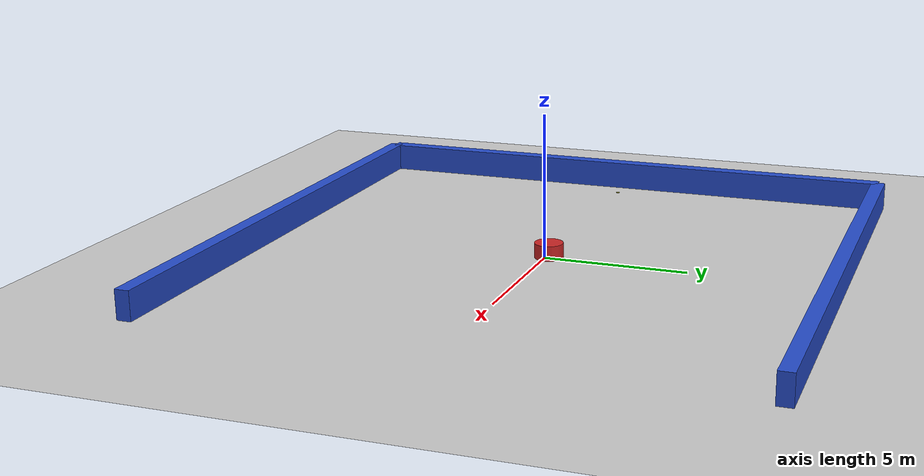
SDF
<sdf version="1.6">
   <world name="default">
      <include>
         <uri>model://ground_plane</uri>
      </include>
      <include>
         <uri>model://sun</uri>
      </include>

    <model name="hardlibobs_141">
      <static>1</static>
      <pose frame="">-0.225000 0.075000 0.000000 0.000000 0.000000 0.000000</pose>
      <link name="link">
        <inertial>
          <mass>1</mass>
          <inertia>
            <ixx>0.145833</ixx>
            <ixy>0</ixy>
            <ixz>0</ixz>
            <iyy>0.145833</iyy>
            <iyz>0</iyz>
            <izz>0.125</izz>
          </inertia>
        </inertial>
        <collision name="collision">
           <geometry>
            <cylinder>
                <radius>0.5000</radius>
                 <length> 1 </length>
            </cylinder>
          </geometry>
           <surface>
            <contact>
              <ode />
            </contact>
            <bounce />
            <friction>
              <torsional>
                <ode />
              </torsional>
              <ode />
            </friction>
          </surface>
        </collision>
        <visual name="visual">
           <geometry>
            <cylinder>
                <radius>0.5000</radius>
                 <length> 1 </length>
            </cylinder>
          </geometry>
          <material>
            <script>
              <name>Gazebo/Red</name>
              <uri>file://media/materials/scripts/gazebo.material</uri>
            </script>
          </material>
        </visual>
        <self_collide>0</self_collide>
        <kinematic>0</kinematic>
        <gravity>1</gravity>
      </link>
      <plugin name="hardlibobs_141" filename="hardlibobs_141.so" />
    </model>

    <model name="mediumlibobs_118">
      <static>1</static>
      <pose frame="">-0.225000 0.075000 0.000000 0.000000 0.000000 0.000000</pose>
      <link name="link">
        <inertial>
          <mass>1</mass>
          <inertia>
            <ixx>0.145833</ixx>
            <ixy>0</ixy>
            <ixz>0</ixz>
            <iyy>0.145833</iyy>
            <iyz>0</iyz>
            <izz>0.125</izz>
          </inertia>
        </inertial>
        <collision name="collision">
           <geometry>
            <cylinder>
                <radius>0.5000</radius>
                 <length> 1 </length>
            </cylinder>
          </geometry>
           <surface>
            <contact>
              <ode />
            </contact>
            <bounce />
            <friction>
              <torsional>
                <ode />
              </torsional>
              <ode />
            </friction>
          </surface>
        </collision>
        <visual name="visual">
           <geometry>
            <cylinder>
                <radius>0.5000</radius>
                 <length> 1 </length>
            </cylinder>
          </geometry>
          <material>
            <script>
              <name>Gazebo/Red</name>
              <uri>file://media/materials/scripts/gazebo.material</uri>
            </script>
          </material>
        </visual>
        <self_collide>0</self_collide>
        <kinematic>0</kinematic>
        <gravity>1</gravity>
      </link>
      <plugin name="mediumlibobs_118" filename="mediumlibobs_118.so" />
    </model>

    <model name="mediumlibobs_33">
      <static>1</static>
      <pose frame="">-0.225000 0.075000 0.000000 0.000000 0.000000 0.000000</pose>
      <link name="link">
        <inertial>
          <mass>1</mass>
          <inertia>
            <ixx>0.145833</ixx>
            <ixy>0</ixy>
            <ixz>0</ixz>
            <iyy>0.145833</iyy>
            <iyz>0</iyz>
            <izz>0.125</izz>
          </inertia>
        </inertial>
        <collision name="collision">
           <geometry>
            <cylinder>
                <radius>0.5000</radius>
                 <length> 1 </length>
            </cylinder>
          </geometry>
           <surface>
            <contact>
              <ode />
            </contact>
            <bounce />
            <friction>
              <torsional>
                <ode />
              </torsional>
              <ode />
            </friction>
          </surface>
        </collision>
        <visual name="visual">
           <geometry>
            <cylinder>
                <radius>0.5000</radius>
                 <length> 1 </length>
            </cylinder>
          </geometry>
          <material>
            <script>
              <name>Gazebo/Red</name>
              <uri>file://media/materials/scripts/gazebo.material</uri>
            </script>
          </material>
        </visual>
        <self_collide>0</self_collide>
        <kinematic>0</kinematic>
        <gravity>1</gravity>
      </link>
      <plugin name="mediumlibobs_33" filename="mediumlibobs_33.so" />
    </model>

    <model name="mediumlibobs_171">
      <static>1</static>
      <pose frame="">-0.225000 0.075000 0.000000 0.000000 0.000000 0.000000</pose>
      <link name="link">
        <inertial>
          <mass>1</mass>
          <inertia>
            <ixx>0.145833</ixx>
            <ixy>0</ixy>
            <ixz>0</ixz>
            <iyy>0.145833</iyy>
            <iyz>0</iyz>
            <izz>0.125</izz>
          </inertia>
        </inertial>
        <collision name="collision">
           <geometry>
            <cylinder>
                <radius>0.5000</radius>
                 <length> 1 </length>
            </cylinder>
          </geometry>
           <surface>
            <contact>
              <ode />
            </contact>
            <bounce />
            <friction>
              <torsional>
                <ode />
              </torsional>
              <ode />
            </friction>
          </surface>
        </collision>
        <visual name="visual">
           <geometry>
            <cylinder>
                <radius>0.5000</radius>
                 <length> 1 </length>
            </cylinder>
          </geometry>
          <material>
            <script>
              <name>Gazebo/Red</name>
              <uri>file://media/materials/scripts/gazebo.material</uri>
            </script>
          </material>
        </visual>
        <self_collide>0</self_collide>
        <kinematic>0</kinematic>
        <gravity>1</gravity>
      </link>
      <plugin name="mediumlibobs_171" filename="mediumlibobs_171.so" />
    </model>

    <model name="hardlibobs_167">
      <static>1</static>
      <pose frame="">-0.225000 0.075000 0.000000 0.000000 0.000000 0.000000</pose>
      <link name="link">
        <inertial>
          <mass>1</mass>
          <inertia>
            <ixx>0.145833</ixx>
            <ixy>0</ixy>
            <ixz>0</ixz>
            <iyy>0.145833</iyy>
            <iyz>0</iyz>
            <izz>0.125</izz>
          </inertia>
        </inertial>
        <collision name="collision">
           <geometry>
            <cylinder>
                <radius>0.5000</radius>
                 <length> 1 </length>
            </cylinder>
          </geometry>
           <surface>
            <contact>
              <ode />
            </contact>
            <bounce />
            <friction>
              <torsional>
                <ode />
              </torsional>
              <ode />
            </friction>
          </surface>
        </collision>
        <visual name="visual">
           <geometry>
            <cylinder>
                <radius>0.5000</radius>
                 <length> 1 </length>
            </cylinder>
          </geometry>
          <material>
            <script>
              <name>Gazebo/Red</name>
              <uri>file://media/materials/scripts/gazebo.material</uri>
            </script>
          </material>
        </visual>
        <self_collide>0</self_collide>
        <kinematic>0</kinematic>
        <gravity>1</gravity>
      </link>
      <plugin name="hardlibobs_167" filename="hardlibobs_167.so" />
    </model>

    <model name="hardlibobs_113">
      <static>1</static>
      <pose frame="">-0.225000 0.075000 0.000000 0.000000 0.000000 0.000000</pose>
      <link name="link">
        <inertial>
          <mass>1</mass>
          <inertia>
            <ixx>0.145833</ixx>
            <ixy>0</ixy>
            <ixz>0</ixz>
            <iyy>0.145833</iyy>
            <iyz>0</iyz>
            <izz>0.125</izz>
          </inertia>
        </inertial>
        <collision name="collision">
           <geometry>
            <cylinder>
                <radius>0.5000</radius>
                 <length> 1 </length>
            </cylinder>
          </geometry>
           <surface>
            <contact>
              <ode />
            </contact>
            <bounce />
            <friction>
              <torsional>
                <ode />
              </torsional>
              <ode />
            </friction>
          </surface>
        </collision>
        <visual name="visual">
           <geometry>
            <cylinder>
                <radius>0.5000</radius>
                 <length> 1 </length>
            </cylinder>
          </geometry>
          <material>
            <script>
              <name>Gazebo/Red</name>
              <uri>file://media/materials/scripts/gazebo.material</uri>
            </script>
          </material>
        </visual>
        <self_collide>0</self_collide>
        <kinematic>0</kinematic>
        <gravity>1</gravity>
      </link>
      <plugin name="hardlibobs_113" filename="hardlibobs_113.so" />
    </model>

    <model name="hardlibobs_165">
      <static>1</static>
      <pose frame="">-0.225000 0.075000 0.000000 0.000000 0.000000 0.000000</pose>
      <link name="link">
        <inertial>
          <mass>1</mass>
          <inertia>
            <ixx>0.145833</ixx>
            <ixy>0</ixy>
            <ixz>0</ixz>
            <iyy>0.145833</iyy>
            <iyz>0</iyz>
            <izz>0.125</izz>
          </inertia>
        </inertial>
        <collision name="collision">
           <geometry>
            <cylinder>
                <radius>0.5000</radius>
                 <length> 1 </length>
            </cylinder>
          </geometry>
           <surface>
            <contact>
              <ode />
            </contact>
            <bounce />
            <friction>
              <torsional>
                <ode />
              </torsional>
              <ode />
            </friction>
          </surface>
        </collision>
        <visual name="visual">
           <geometry>
            <cylinder>
                <radius>0.5000</radius>
                 <length> 1 </length>
            </cylinder>
          </geometry>
          <material>
            <script>
              <name>Gazebo/Red</name>
              <uri>file://media/materials/scripts/gazebo.material</uri>
            </script>
          </material>
        </visual>
        <self_collide>0</self_collide>
        <kinematic>0</kinematic>
        <gravity>1</gravity>
      </link>
      <plugin name="hardlibobs_165" filename="hardlibobs_165.so" />
    </model>

    <model name="hardlibobs_177">
      <static>1</static>
      <pose frame="">-0.225000 0.075000 0.000000 0.000000 0.000000 0.000000</pose>
      <link name="link">
        <inertial>
          <mass>1</mass>
          <inertia>
            <ixx>0.145833</ixx>
            <ixy>0</ixy>
            <ixz>0</ixz>
            <iyy>0.145833</iyy>
            <iyz>0</iyz>
            <izz>0.125</izz>
          </inertia>
        </inertial>
        <collision name="collision">
           <geometry>
            <cylinder>
                <radius>0.5000</radius>
                 <length> 1 </length>
            </cylinder>
          </geometry>
           <surface>
            <contact>
              <ode />
            </contact>
            <bounce />
            <friction>
              <torsional>
                <ode />
              </torsional>
              <ode />
            </friction>
          </surface>
        </collision>
        <visual name="visual">
           <geometry>
            <cylinder>
                <radius>0.5000</radius>
                 <length> 1 </length>
            </cylinder>
          </geometry>
          <material>
            <script>
              <name>Gazebo/Red</name>
              <uri>file://media/materials/scripts/gazebo.material</uri>
            </script>
          </material>
        </visual>
        <self_collide>0</self_collide>
        <kinematic>0</kinematic>
        <gravity>1</gravity>
      </link>
      <plugin name="hardlibobs_177" filename="hardlibobs_177.so" />
    </model>

    <model name="hardlibobs_60">
      <static>1</static>
      <pose frame="">-0.225000 0.075000 0.000000 0.000000 0.000000 0.000000</pose>
      <link name="link">
        <inertial>
          <mass>1</mass>
          <inertia>
            <ixx>0.145833</ixx>
            <ixy>0</ixy>
            <ixz>0</ixz>
            <iyy>0.145833</iyy>
            <iyz>0</iyz>
            <izz>0.125</izz>
          </inertia>
        </inertial>
        <collision name="collision">
           <geometry>
            <cylinder>
                <radius>0.5000</radius>
                 <length> 1 </length>
            </cylinder>
          </geometry>
           <surface>
            <contact>
              <ode />
            </contact>
            <bounce />
            <friction>
              <torsional>
                <ode />
              </torsional>
              <ode />
            </friction>
          </surface>
        </collision>
        <visual name="visual">
           <geometry>
            <cylinder>
                <radius>0.5000</radius>
                 <length> 1 </length>
            </cylinder>
          </geometry>
          <material>
            <script>
              <name>Gazebo/Red</name>
              <uri>file://media/materials/scripts/gazebo.material</uri>
            </script>
          </material>
        </visual>
        <self_collide>0</self_collide>
        <kinematic>0</kinematic>
        <gravity>1</gravity>
      </link>
      <plugin name="hardlibobs_60" filename="hardlibobs_60.so" />
    </model>

    <model name="hardlibobs_159">
      <static>1</static>
      <pose frame="">-0.225000 0.075000 0.000000 0.000000 0.000000 0.000000</pose>
      <link name="link">
        <inertial>
          <mass>1</mass>
          <inertia>
            <ixx>0.145833</ixx>
            <ixy>0</ixy>
            <ixz>0</ixz>
            <iyy>0.145833</iyy>
            <iyz>0</iyz>
            <izz>0.125</izz>
          </inertia>
        </inertial>
        <collision name="collision">
           <geometry>
            <cylinder>
                <radius>0.5000</radius>
                 <length> 1 </length>
            </cylinder>
          </geometry>
           <surface>
            <contact>
              <ode />
            </contact>
            <bounce />
            <friction>
              <torsional>
                <ode />
              </torsional>
              <ode />
            </friction>
          </surface>
        </collision>
        <visual name="visual">
           <geometry>
            <cylinder>
                <radius>0.5000</radius>
                 <length> 1 </length>
            </cylinder>
          </geometry>
          <material>
            <script>
              <name>Gazebo/Red</name>
              <uri>file://media/materials/scripts/gazebo.material</uri>
            </script>
          </material>
        </visual>
        <self_collide>0</self_collide>
        <kinematic>0</kinematic>
        <gravity>1</gravity>
      </link>
      <plugin name="hardlibobs_159" filename="hardlibobs_159.so" />
    </model>

    <model name="mediumlibobs_41">
      <static>1</static>
      <pose frame="">-0.225000 0.075000 0.000000 0.000000 0.000000 0.000000</pose>
      <link name="link">
        <inertial>
          <mass>1</mass>
          <inertia>
            <ixx>0.145833</ixx>
            <ixy>0</ixy>
            <ixz>0</ixz>
            <iyy>0.145833</iyy>
            <iyz>0</iyz>
            <izz>0.125</izz>
          </inertia>
        </inertial>
        <collision name="collision">
           <geometry>
            <cylinder>
                <radius>0.5000</radius>
                 <length> 1 </length>
            </cylinder>
          </geometry>
           <surface>
            <contact>
              <ode />
            </contact>
            <bounce />
            <friction>
              <torsional>
                <ode />
              </torsional>
              <ode />
            </friction>
          </surface>
        </collision>
        <visual name="visual">
           <geometry>
            <cylinder>
                <radius>0.5000</radius>
                 <length> 1 </length>
            </cylinder>
          </geometry>
          <material>
            <script>
              <name>Gazebo/Red</name>
              <uri>file://media/materials/scripts/gazebo.material</uri>
            </script>
          </material>
        </visual>
        <self_collide>0</self_collide>
        <kinematic>0</kinematic>
        <gravity>1</gravity>
      </link>
      <plugin name="mediumlibobs_41" filename="mediumlibobs_41.so" />
    </model>

    <model name="mediumlibobs_126">
      <static>1</static>
      <pose frame="">-0.225000 0.075000 0.000000 0.000000 0.000000 0.000000</pose>
      <link name="link">
        <inertial>
          <mass>1</mass>
          <inertia>
            <ixx>0.145833</ixx>
            <ixy>0</ixy>
            <ixz>0</ixz>
            <iyy>0.145833</iyy>
            <iyz>0</iyz>
            <izz>0.125</izz>
          </inertia>
        </inertial>
        <collision name="collision">
           <geometry>
            <cylinder>
                <radius>0.5000</radius>
                 <length> 1 </length>
            </cylinder>
          </geometry>
           <surface>
            <contact>
              <ode />
            </contact>
            <bounce />
            <friction>
              <torsional>
                <ode />
              </torsional>
              <ode />
            </friction>
          </surface>
        </collision>
        <visual name="visual">
           <geometry>
            <cylinder>
                <radius>0.5000</radius>
                 <length> 1 </length>
            </cylinder>
          </geometry>
          <material>
            <script>
              <name>Gazebo/Red</name>
              <uri>file://media/materials/scripts/gazebo.material</uri>
            </script>
          </material>
        </visual>
        <self_collide>0</self_collide>
        <kinematic>0</kinematic>
        <gravity>1</gravity>
      </link>
      <plugin name="mediumlibobs_126" filename="mediumlibobs_126.so" />
    </model>

    <model name="mediumlibobs_148">
      <static>1</static>
      <pose frame="">-0.225000 0.075000 0.000000 0.000000 0.000000 0.000000</pose>
      <link name="link">
        <inertial>
          <mass>1</mass>
          <inertia>
            <ixx>0.145833</ixx>
            <ixy>0</ixy>
            <ixz>0</ixz>
            <iyy>0.145833</iyy>
            <iyz>0</iyz>
            <izz>0.125</izz>
          </inertia>
        </inertial>
        <collision name="collision">
           <geometry>
            <cylinder>
                <radius>0.5000</radius>
                 <length> 1 </length>
            </cylinder>
          </geometry>
           <surface>
            <contact>
              <ode />
            </contact>
            <bounce />
            <friction>
              <torsional>
                <ode />
              </torsional>
              <ode />
            </friction>
          </surface>
        </collision>
        <visual name="visual">
           <geometry>
            <cylinder>
                <radius>0.5000</radius>
                 <length> 1 </length>
            </cylinder>
          </geometry>
          <material>
            <script>
              <name>Gazebo/Red</name>
              <uri>file://media/materials/scripts/gazebo.material</uri>
            </script>
          </material>
        </visual>
        <self_collide>0</self_collide>
        <kinematic>0</kinematic>
        <gravity>1</gravity>
      </link>
      <plugin name="mediumlibobs_148" filename="mediumlibobs_148.so" />
    </model>

    <model name="hardlibobs_80">
      <static>1</static>
      <pose frame="">-0.225000 0.075000 0.000000 0.000000 0.000000 0.000000</pose>
      <link name="link">
        <inertial>
          <mass>1</mass>
          <inertia>
            <ixx>0.145833</ixx>
            <ixy>0</ixy>
            <ixz>0</ixz>
            <iyy>0.145833</iyy>
            <iyz>0</iyz>
            <izz>0.125</izz>
          </inertia>
        </inertial>
        <collision name="collision">
           <geometry>
            <cylinder>
                <radius>0.5000</radius>
                 <length> 1 </length>
            </cylinder>
          </geometry>
           <surface>
            <contact>
              <ode />
            </contact>
            <bounce />
            <friction>
              <torsional>
                <ode />
              </torsional>
              <ode />
            </friction>
          </surface>
        </collision>
        <visual name="visual">
           <geometry>
            <cylinder>
                <radius>0.5000</radius>
                 <length> 1 </length>
            </cylinder>
          </geometry>
          <material>
            <script>
              <name>Gazebo/Red</name>
              <uri>file://media/materials/scripts/gazebo.material</uri>
            </script>
          </material>
        </visual>
        <self_collide>0</self_collide>
        <kinematic>0</kinematic>
        <gravity>1</gravity>
      </link>
      <plugin name="hardlibobs_80" filename="hardlibobs_80.so" />
    </model>

    <model name="hardlibobs_132">
      <static>1</static>
      <pose frame="">-0.225000 0.075000 0.000000 0.000000 0.000000 0.000000</pose>
      <link name="link">
        <inertial>
          <mass>1</mass>
          <inertia>
            <ixx>0.145833</ixx>
            <ixy>0</ixy>
            <ixz>0</ixz>
            <iyy>0.145833</iyy>
            <iyz>0</iyz>
            <izz>0.125</izz>
          </inertia>
        </inertial>
        <collision name="collision">
           <geometry>
            <cylinder>
                <radius>0.5000</radius>
                 <length> 1 </length>
            </cylinder>
          </geometry>
           <surface>
            <contact>
              <ode />
            </contact>
            <bounce />
            <friction>
              <torsional>
                <ode />
              </torsional>
              <ode />
            </friction>
          </surface>
        </collision>
        <visual name="visual">
           <geometry>
            <cylinder>
                <radius>0.5000</radius>
                 <length> 1 </length>
            </cylinder>
          </geometry>
          <material>
            <script>
              <name>Gazebo/Red</name>
              <uri>file://media/materials/scripts/gazebo.material</uri>
            </script>
          </material>
        </visual>
        <self_collide>0</self_collide>
        <kinematic>0</kinematic>
        <gravity>1</gravity>
      </link>
      <plugin name="hardlibobs_132" filename="hardlibobs_132.so" />
    </model>

    <model name="hardlibobs_117">
      <static>1</static>
      <pose frame="">-0.225000 0.075000 0.000000 0.000000 0.000000 0.000000</pose>
      <link name="link">
        <inertial>
          <mass>1</mass>
          <inertia>
            <ixx>0.145833</ixx>
            <ixy>0</ixy>
            <ixz>0</ixz>
            <iyy>0.145833</iyy>
            <iyz>0</iyz>
            <izz>0.125</izz>
          </inertia>
        </inertial>
        <collision name="collision">
           <geometry>
            <cylinder>
                <radius>0.5000</radius>
                 <length> 1 </length>
            </cylinder>
          </geometry>
           <surface>
            <contact>
              <ode />
            </contact>
            <bounce />
            <friction>
              <torsional>
                <ode />
              </torsional>
              <ode />
            </friction>
          </surface>
        </collision>
        <visual name="visual">
           <geometry>
            <cylinder>
                <radius>0.5000</radius>
                 <length> 1 </length>
            </cylinder>
          </geometry>
          <material>
            <script>
              <name>Gazebo/Red</name>
              <uri>file://media/materials/scripts/gazebo.material</uri>
            </script>
          </material>
        </visual>
        <self_collide>0</self_collide>
        <kinematic>0</kinematic>
        <gravity>1</gravity>
      </link>
      <plugin name="hardlibobs_117" filename="hardlibobs_117.so" />
    </model>

      <model name="back_wall">
      <static>1</static>\   <pose frame="">-10 0 .5 0 0 0</pose>        <link name="box_link">

	<collision name="collision">
            <geometry>
              <box>
                <size>.5 20 1</size>
              </box>
            </geometry>
           <surface>
            <contact>
              <ode />
            </contact>
            <bounce />
            <friction>
              <torsional>
                <ode />
              </torsional>
              <ode />
            </friction>
          </surface>
        </collision>

          <visual name="visual">
            <geometry>
              <box>
                <size>.5 20 1</size>
              </box>
            </geometry>
          <material>
                 <script>
                     <name>Gazebo/Blue</name>
                         <uri>file://media/materials/scripts/gazebo.material</uri>
                         </script>
                     </material>
          </visual>
        </link>
      </model>
      <model name="top_wall">
      <static>1</static>
       <pose frame="">0 10 .5 0 0 0</pose>        <link name="box_link">

	<collision name="collision">
           <geometry>
              <box>
                <size>20 .5 1</size>
              </box>
            </geometry>
           <surface>
            <contact>
              <ode />
            </contact>
            <bounce />
            <friction>
              <torsional>
                <ode />
              </torsional>
              <ode />
            </friction>
          </surface>
        </collision>
          <visual name="visual">
            <geometry>
              <box>
                <size>20 .5 1</size>
              </box>
            </geometry>
          <material>
                 <script>
                     <name>Gazebo/Blue</name>
                         <uri>file://media/materials/scripts/gazebo.material</uri>
                         </script>
                     </material>
          </visual>
        </link>
      </model>
      <model name="bottom_wall">
      <static>1</static>
       <pose frame="">0 -10 .5 0 0 0</pose>        <link name="box_link">
	<collision name="collision">
            <geometry>
              <box>
                <size>20 .5 1</size>
              </box>
            </geometry>
           <surface>
            <contact>
              <ode />
            </contact>
            <bounce />
            <friction>
              <torsional>
                <ode />
              </torsional>
              <ode />
            </friction>
          </surface>
        </collision>
          <visual name="visual">
            <geometry>
              <box>
                <size>20 .5 1</size>
              </box>
            </geometry>
          <material>
                 <script>
                     <name>Gazebo/Blue</name>
                         <uri>file://media/materials/scripts/gazebo.material</uri>
                         </script>
                     </material>
          </visual>
        </link>
      </model>
   <model name="goal"><static>1</static><pose frame="">-9.00000 0.000000 0.000000 0.000000 0.000000 0.000000</pose><link name="link"><inertial><mass>1</mass><inertia><ixx>0.145833</ixx><ixy>0</ixy><ixz>0</ixz><iyy>0.145833</iyy><iyz>0</iyz><izz>0.125</izz></inertia></inertial><collision name="collision"><geometry><cylinder><radius>0.075000</radius><length>1</length></cylinder></geometry><max_contacts>10</max_contacts><surface><contact><ode /></contact><bounce /><friction><torsional><ode /></torsional><ode /></friction></surface></collision><visual name="visual"><geometry><cylinder><radius>0.075000</radius><length>0.001</length></cylinder></geometry><material><ambient>0 1 0 1</ambient><diffuse>0.4 0.4 0.1 1</diffuse></material><material><script><name>Gazebo/Grey</name><uri>file://media/materials/scripts/gazebo.material</uri></script></material></visual><self_collide>0</self_collide><kinematic>0</kinematic><gravity>0</gravity></link></model></world>
</sdf>
